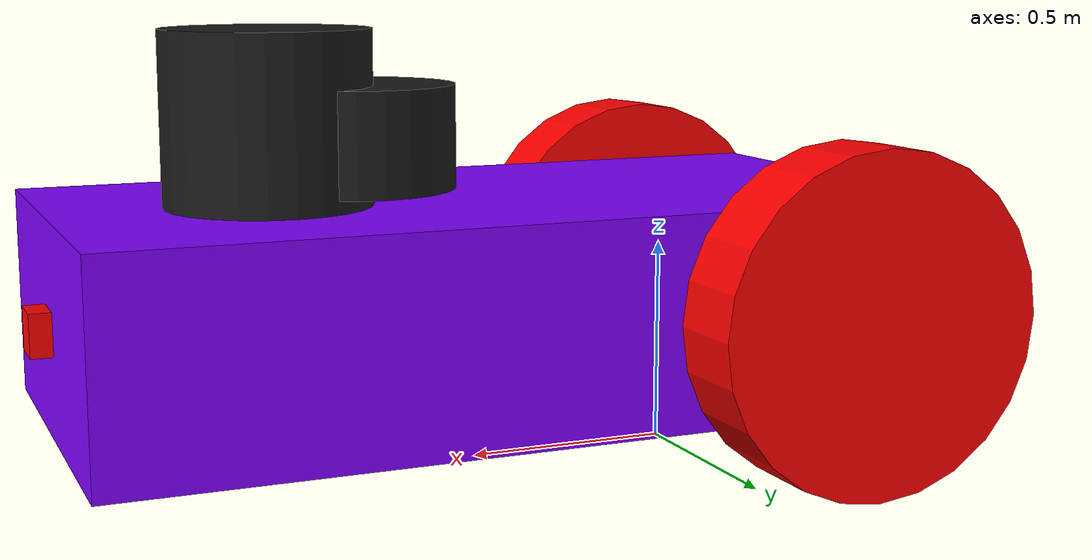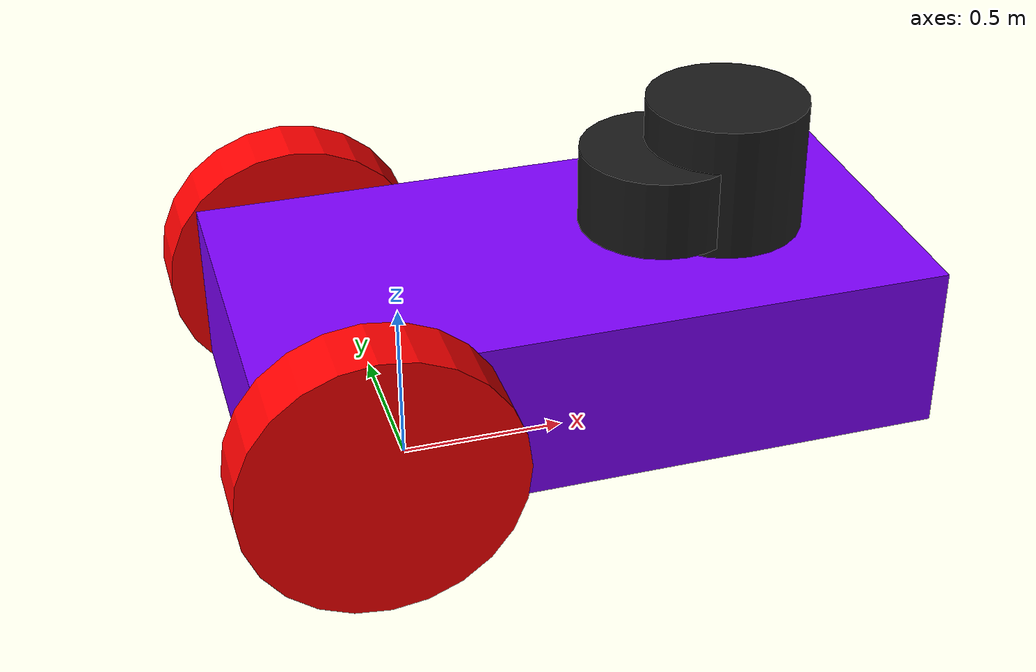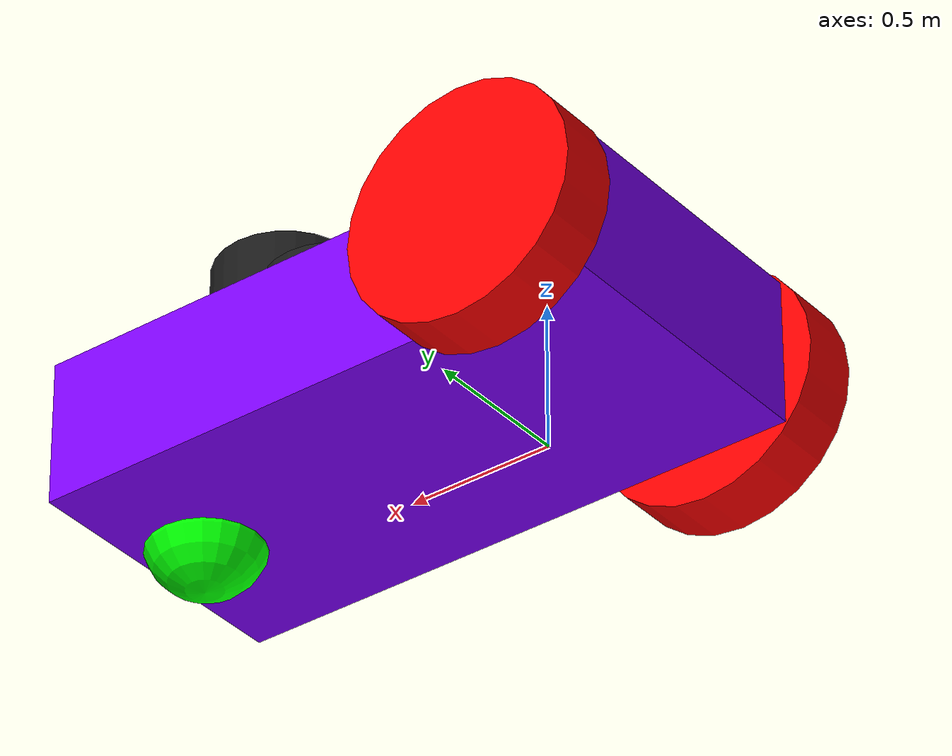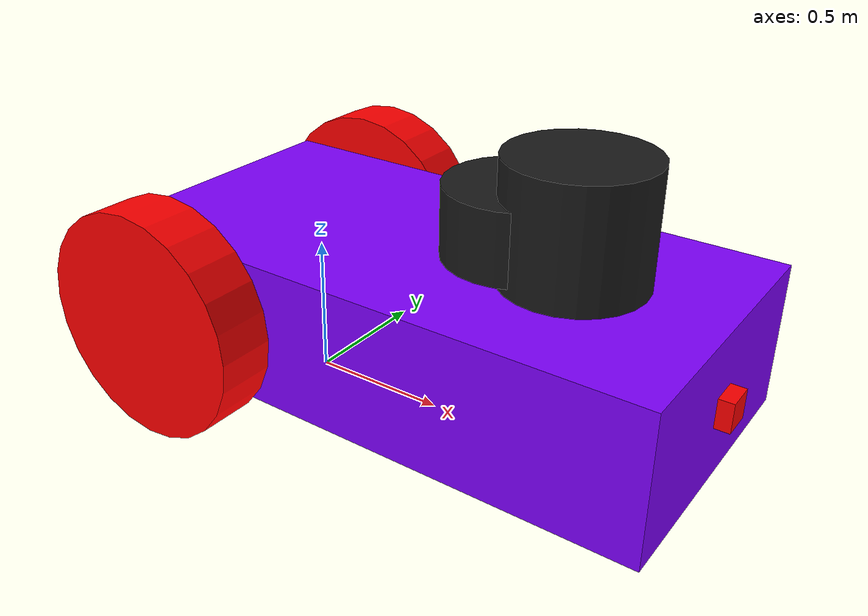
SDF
<?xml version="1.0"?>
<sdf version="1.9">
    <!-- ==================== ROBÔ ==================== -->
    <model name="vehicle_blue" canonical_link="base_link">

      <!-- Frames auxiliares -->
      <frame name="caster_frame" attached_to="base_link">
        <pose>0.8 0 -0.2 0 0 0</pose>
      </frame>
      <frame name="lidar_frame" attached_to="base_link">
        <pose>0.8 0 0.5 0 0 0</pose>
      </frame>

      <!-- Chassi -->
      <link name="base_link">
        <pose relative_to="__model__">0.5 0 0.4 0 0 0</pose>
        <inertial>
          <mass>1.14395</mass>
          <inertia>
            <ixx>0.095329</ixx><ixy>0</ixy><ixz>0</ixz>
            <iyy>0.381317</iyy><iyz>0</iyz><izz>0.476646</izz>
          </inertia>
        </inertial>

        <visual name="visual">
          <geometry><box><size>2.0 1.0 0.5</size></box></geometry>
          <material>
            <ambient>0.0 1.0 0.0 1</ambient>
            <diffuse>0.5 0.0 1.0 1</diffuse>
            <specular>1.0 0.0 0.5 1</specular>
          </material>
        </visual>

        <collision name="collision">
          <geometry><box><size>2.0 1.0 0.5</size></box></geometry>
        </collision>

        <!-- IMU no chassi -->
        <sensor name="imu_sensor" type="imu">
          <always_on>1</always_on>
          <update_rate>1</update_rate>
          <visualize>true</visualize>
          <topic>imu</topic>
        </sensor>
      </link>

      <!-- LiDAR em link próprio -->
      <link name="lidar_link">
        <pose>0.8 0.0 0.8 0 0 0</pose>
        <inertial>
          <mass>0.1</mass>
          <inertia>
            <ixx>0.000166667</ixx><iyy>0.000166667</iyy><izz>0.000166667</izz>
          </inertia>
        </inertial>
        <collision name="collision">
          <geometry><cylinder><radius>0.24</radius><length>0.24</length></cylinder></geometry>
        </collision>
        <visual name="visual">
          <geometry><cylinder><radius>0.24</radius><length>0.24</length></cylinder></geometry>
          <material><diffuse>0.1 0.1 0.1 1</diffuse></material>
        </visual>

        <sensor name="gpu_lidar" type="gpu_lidar">
          <pose relative_to="lidar_frame">0 0 0 0 0 0</pose>
          <topic>/scan</topic>
          <update_rate>10</update_rate>
          <lidar>
            <scan>
              <horizontal>
                <samples>250</samples>
                <resolution>1</resolution>
                <min_angle>-2.0</min_angle>
                <max_angle> 2.0</max_angle>
              </horizontal>
              <vertical>
                <samples>1</samples>
                <resolution>0.01</resolution>
                <min_angle>0</min_angle>
                <max_angle>0</max_angle>
              </vertical>
            </scan>
            <range>
              <min>0.08</min>
              <max>10.0</max>
              <resolution>0.01</resolution>
            </range>
          </lidar>
          <always_on>1</always_on>
          <visualize>true</visualize>
        </sensor>
      </link>

      <!-- Junta fixa LiDAR -->
      <joint name="lidar_fixed" type="fixed">
        <parent>base_link</parent>
        <child>lidar_link</child>
      </joint>

      <!-- Câmera em link próprio + sensor -->
      <link name="camera">
        <pose relative_to="base_link">1 0 0 0 0 0</pose>
        <visual name="visual">
          <geometry><box><size>0.1 0.1 0.1</size></box></geometry>
          <material>
            <ambient>1.0 0.0 0.0 1</ambient>
            <diffuse>1.0 0.0 0.0 1</diffuse>
            <specular>1.0 0.0 0.0 1</specular>
          </material>
        </visual>
        <collision name="collision">
          <geometry><box><size>0.1 0.1 0.1</size></box></geometry>
        </collision>

        <sensor type="camera" name="camera_sensor">
          <topic>/camera/image_raw</topic>
          <update_rate>30.0</update_rate>
          <camera name="head">
            <horizontal_fov>1.3962634</horizontal_fov>
            <image><width>800</width><height>800</height><format>R8G8B8</format></image>
            <clip><near>0.02</near><far>300</far></clip>
            <noise><type>gaussian</type><mean>0.0</mean><stddev>0.007</stddev></noise>
          </camera>
        </sensor>
      </link>

      <joint name="camera_joint" type="fixed">
        <parent>base_link</parent>
        <child>camera</child>
        <pose>1 0 0 0 0 0</pose>
      </joint>

     <!-- GPS em link próprio + sensor -->
     <link name="GPS_link">
        <pose>1.0 0.0 0.8 0 0 0</pose>

        <collision name="collision">
          <geometry><cylinder><radius>0.24</radius><length>0.24</length></cylinder></geometry>
        </collision>
        <visual name="visual">
          <geometry><cylinder><radius>0.24</radius><length>0.50</length></cylinder></geometry>
          <material><diffuse>0.1 0.1 0.1 1</diffuse></material>
        </visual>

        <sensor name="gpu_lidar" type="gpu_lidar">
          <pose relative_to="lidar_frame">0 0 0 0 0 0</pose>
          <topic>/scan</topic>
          <update_rate>10</update_rate>
          <lidar>
            <scan>
              <horizontal>
                <samples>250</samples>
                <resolution>1</resolution>
                <min_angle>-2.0</min_angle>
                <max_angle> 2.0</max_angle>
              </horizontal>
              <vertical>
                <samples>1</samples>
                <resolution>0.01</resolution>
                <min_angle>0</min_angle>
                <max_angle>0</max_angle>
              </vertical>
            </scan>
            <range>
              <min>0.08</min>
              <max>10.0</max>
              <resolution>0.01</resolution>
            </range>
          </lidar>
          <always_on>1</always_on>
          <visualize>true</visualize>
        </sensor>
      </link>

      <!-- Rodas -->
      <link name="roda_esquerda">
        <pose relative_to="base_link">-0.7 0.6 0 -1.5707 0 0</pose>
        <inertial>
          <mass>1</mass>
          <inertia>
            <ixx>0.043333</ixx><ixy>0</ixy><ixz>0</ixz>
            <iyy>0.043333</iyy><iyz>0</iyz><izz>0.08</izz>
          </inertia>
        </inertial>
        <visual name="visual">
          <geometry><cylinder><radius>0.4</radius><length>0.2</length></cylinder></geometry>
          <material><ambient>1 0 0 1</ambient><diffuse>1 0 0 1</diffuse><specular>1 0 0 1</specular></material>
        </visual>
        <collision name="collision">
          <geometry><cylinder><radius>0.4</radius><length>0.2</length></cylinder></geometry>
        </collision>
      </link>

      <link name="roda_direita">
        <pose relative_to="base_link">-0.7 -0.6 0 -1.5707 0 0</pose>
        <inertial>
          <mass>1</mass>
          <inertia>
            <ixx>0.043333</ixx><ixy>0</ixy><ixz>0</ixz>
            <iyy>0.043333</iyy><iyz>0</iyz><izz>0.08</izz>
          </inertia>
        </inertial>
        <visual name="visual">
          <geometry><cylinder><radius>0.4</radius><length>0.2</length></cylinder></geometry>
          <material><ambient>1 0 0 1</ambient><diffuse>1 0 0 1</diffuse><specular>1 0 0 1</specular></material>
        </visual>
        <collision name="collision">
          <geometry><cylinder><radius>0.4</radius><length>0.2</length></cylinder></geometry>
        </collision>
      </link>

      <link name="caster">
        <pose relative_to="caster_frame"/>
        <inertial>
          <mass>1</mass>
          <inertia>
            <ixx>0.016</ixx><ixy>0</ixy><ixz>0</ixz>
            <iyy>0.016</iyy><iyz>0</iyz><izz>0.016</izz>
          </inertia>
        </inertial>
        <visual name="visual">
          <geometry><sphere><radius>0.2</radius></sphere></geometry>
          <material><ambient>0 1 0 1</ambient><diffuse>0 1 0 1</diffuse><specular>0 1 0 1</specular></material>
        </visual>
        <collision name="collision">
          <geometry><sphere><radius>0.2</radius></sphere></geometry>
        </collision>
      </link>

      <!-- Juntas -->
      <joint name="junta_roda_esquerda" type="revolute">
        <pose relative_to="roda_esquerda"/>
        <parent>base_link</parent>
        <child>roda_esquerda</child>
        <axis>
          <xyz expressed_in="__model__">0 1 0</xyz>
          <limit><lower>-1.79769e+308</lower><upper>1.79769e+308</upper></limit>
        </axis>
      </joint>

      <joint name="junta_roda_direita" type="revolute">
        <pose relative_to="roda_direita"/>
        <parent>base_link</parent>
        <child>roda_direita</child>
        <axis>
          <xyz expressed_in="__model__">0 1 0</xyz>
          <limit><lower>-1.79769e+308</lower><upper>1.79769e+308</upper></limit>
        </axis>
      </joint>

      <joint name="caster_wheel" type="ball">
        <parent>base_link</parent>
        <child>caster</child>
      </joint>

      <!-- Plugins do modelo -->
      <plugin filename="libignition-gazebo-diff-drive-system.so" name="ignition::gazebo::systems::DiffDrive">
        <left_joint>junta_roda_esquerda</left_joint>
        <right_joint>junta_roda_direita</right_joint>
        <wheel_separation>1.2</wheel_separation>
        <wheel_radius>0.4</wheel_radius>
        <odom_publish_frequency>1</odom_publish_frequency>
        <topic>/cmd_vel</topic>
        <odom_topic>/odom</odom_topic>
      </plugin>

      <plugin filename="libignition-gazebo-triggered-publisher-system.so" name="ignition::gazebo::systems::TriggeredPublisher">
        <input type="ignition.msgs.Boolean" topic="/wall/touched">
          <match>data: true</match>
        </input>
        <output type="ignition.msgs.Twist" topic="/cmd_vel">
          linear: {x: 0.0}, angular: {z: 0.0}
        </output>
      </plugin>

    </model>
</sdf>
